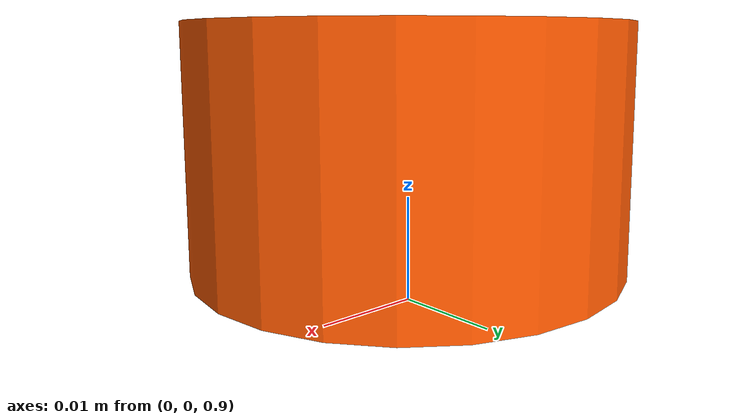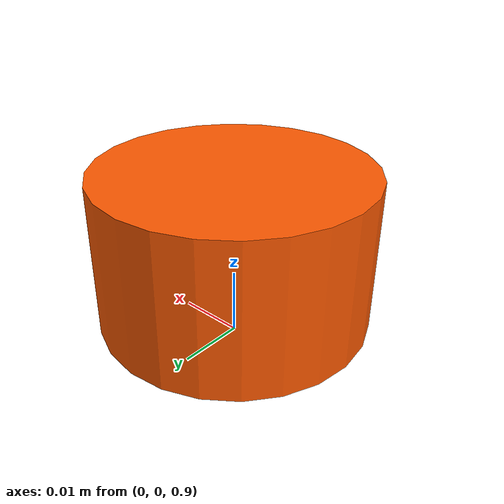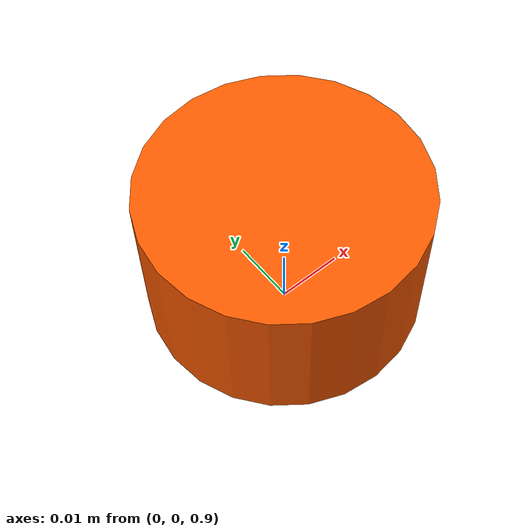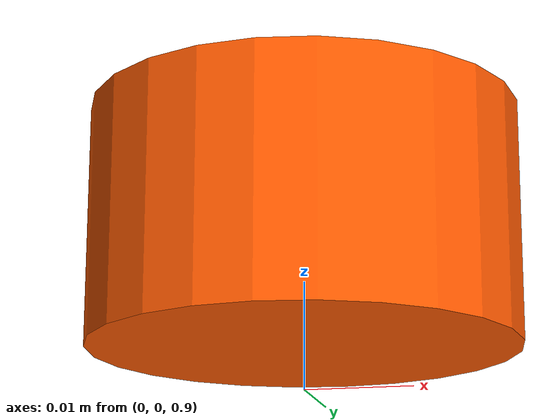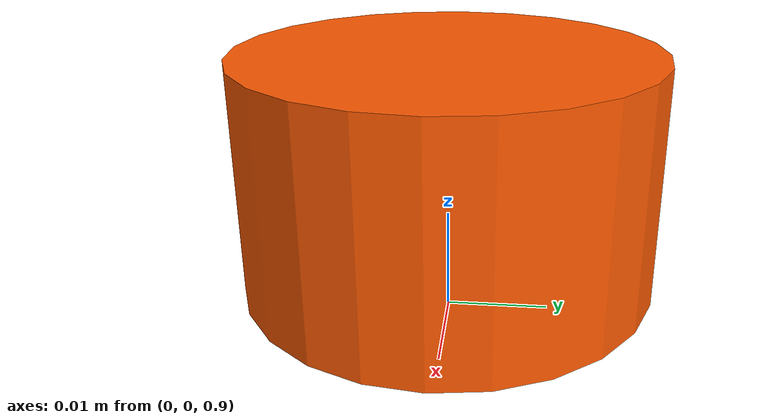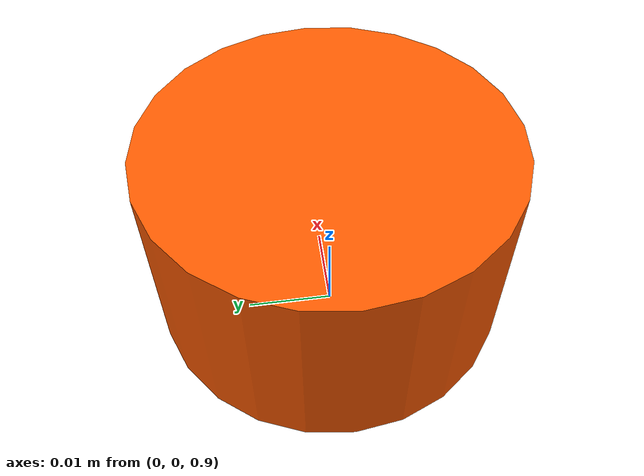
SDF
<?xml version="1.0" ?>
<sdf version="1.4">
  <model name="workpiece_base">
    <pose>0 0 0.915 0 0 0 </pose>
    <static>false</static>
    <link name="cylinder">
      <gravity>true</gravity>
      <inertial>
        <mass>0.05</mass>
      </inertial>
      <collision name="cylinder_collision">
        <geometry>
          <cylinder>
            <radius>0.02</radius>
	    <length>0.0225</length>
          </cylinder>
        </geometry>
      	<surface>
      	  <friction>
      	    <ode>
      	      <mu>1.0</mu>
              <mu2>1.0</mu2>
              <slip1>0.0</slip1>
              <slip2>0.0</slip2>
      	    </ode>
      	  </friction>
          <contact>
            <ode>
              <min_depth>0.01</min_depth>
            </ode>
          </contact>
      	</surface>
      </collision>
      <visual name="cylinder_visual">
        <cast_shadows>false</cast_shadows>
        <geometry>
          <cylinder>
            <radius>0.02</radius>
	    <length>0.0225</length>
          </cylinder>
        </geometry>
	<material>
	  <ambient>1.0 0.35 0.0 1</ambient>
	  <diffuse>1.0 0.35 0.0 1</diffuse>
	</material>
      </visual>
      <visual name="ring_0">
      <cast_shadows>false</cast_shadows>
      <transparency>1</transparency>
        <geometry>
          <cylinder>
            <radius>0.02</radius>
            <length>0.008</length>
          </cylinder>
        </geometry>
      </visual>
      <visual name="ring_1">
      <cast_shadows>false</cast_shadows>
      <transparency>1</transparency>
        <geometry>
          <cylinder>
            <radius>0.02</radius>
            <length>0.008</length>
          </cylinder>
        </geometry>
      </visual>
      <visual name="ring_2">
      <cast_shadows>false</cast_shadows>
      <transparency>1</transparency>
        <geometry>
          <cylinder>
            <radius>0.02</radius>
            <length>0.008</length>
          </cylinder>
        </geometry>
      </visual>
      <visual name="cap">
      <cast_shadows>false</cast_shadows>
      <transparency>1</transparency>
        <geometry>
          <cylinder>
            <radius>0.02</radius>
            <length>0.004</length>
          </cylinder>
        </geometry>
      </visual>
    </link>

    <!-- GPS plugin to let others know where this base is -->
    <plugin name="Puck" filename="libpuck.so"/>
    <plugin name="GPS" filename="libgps.so"/>
  </model>
</sdf>
